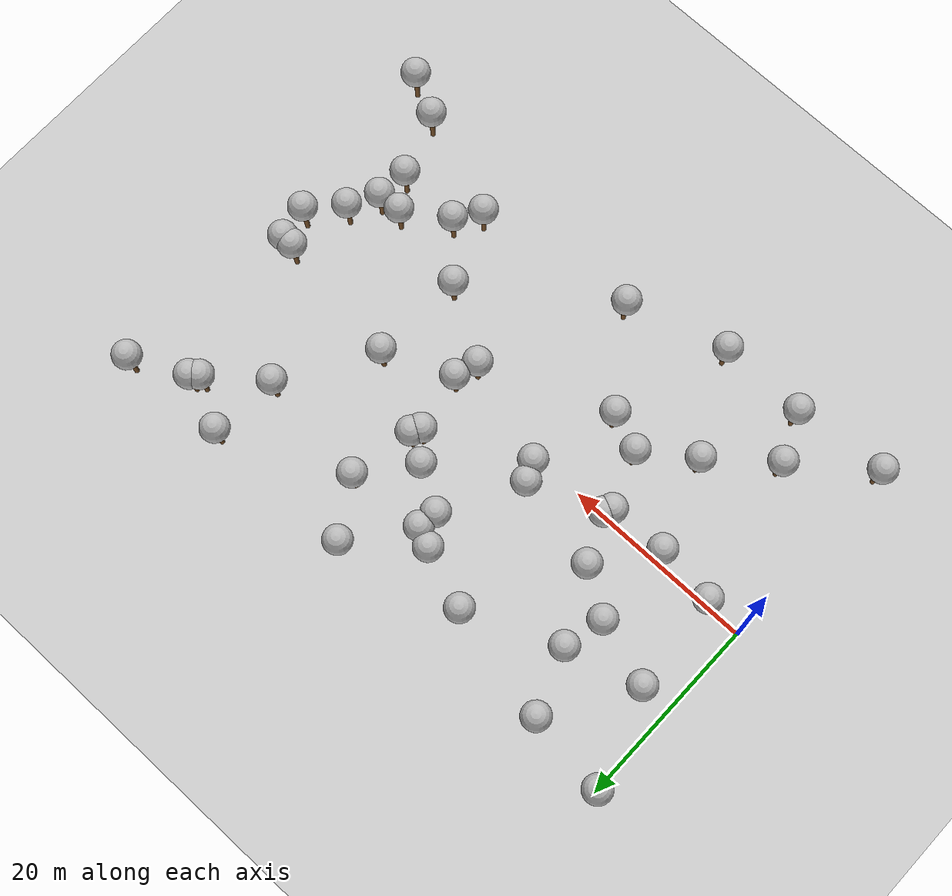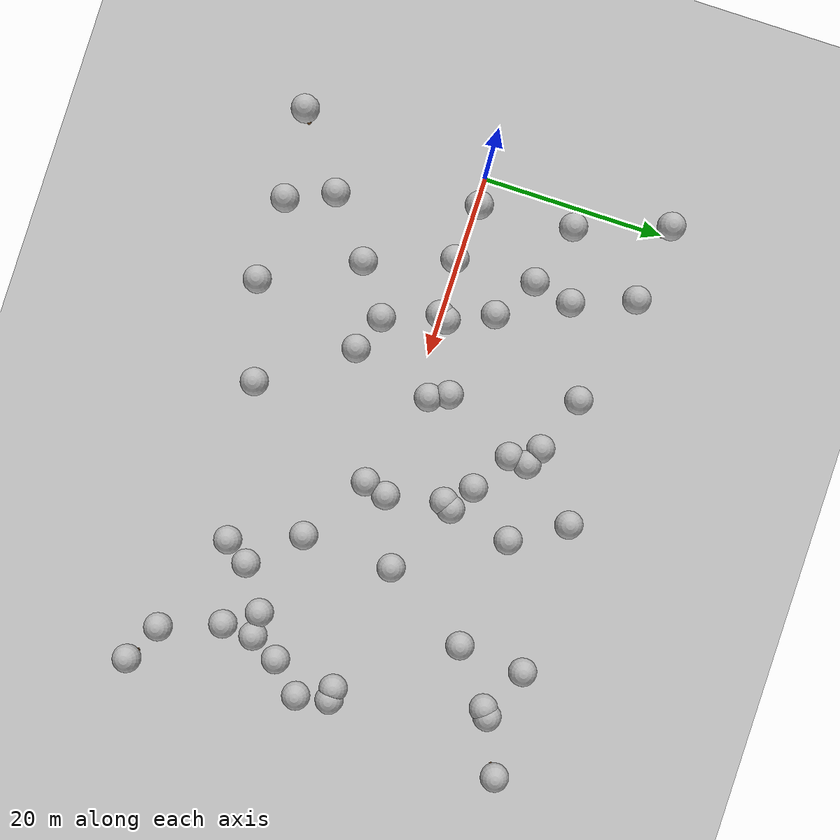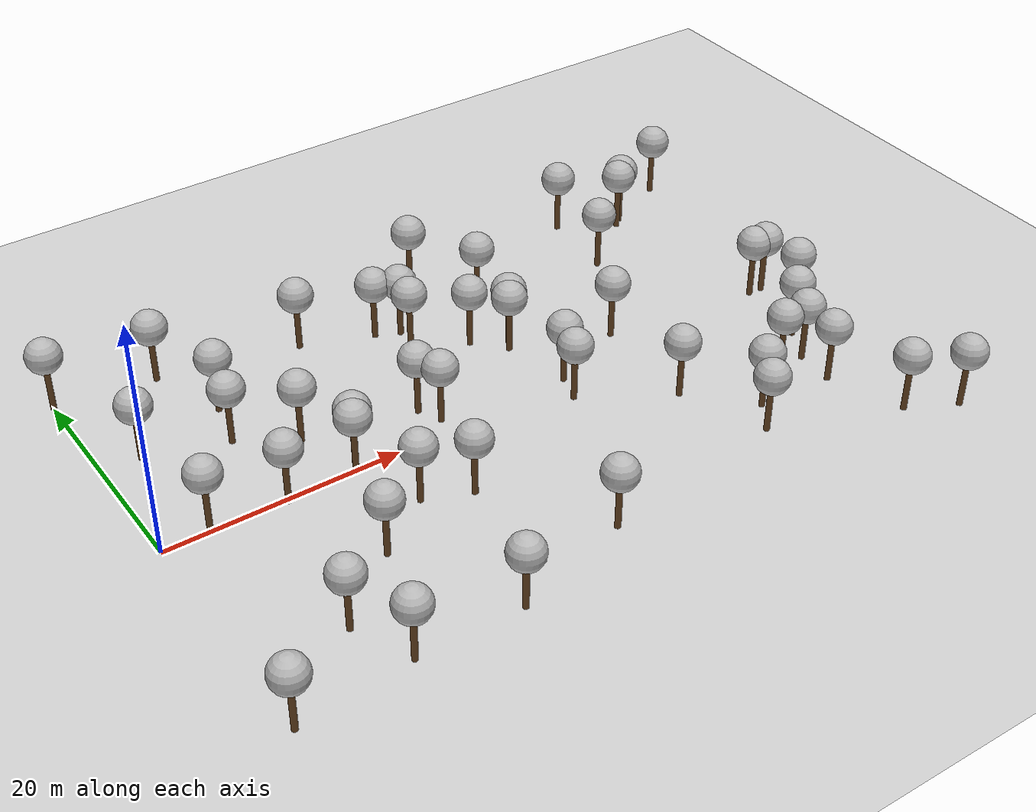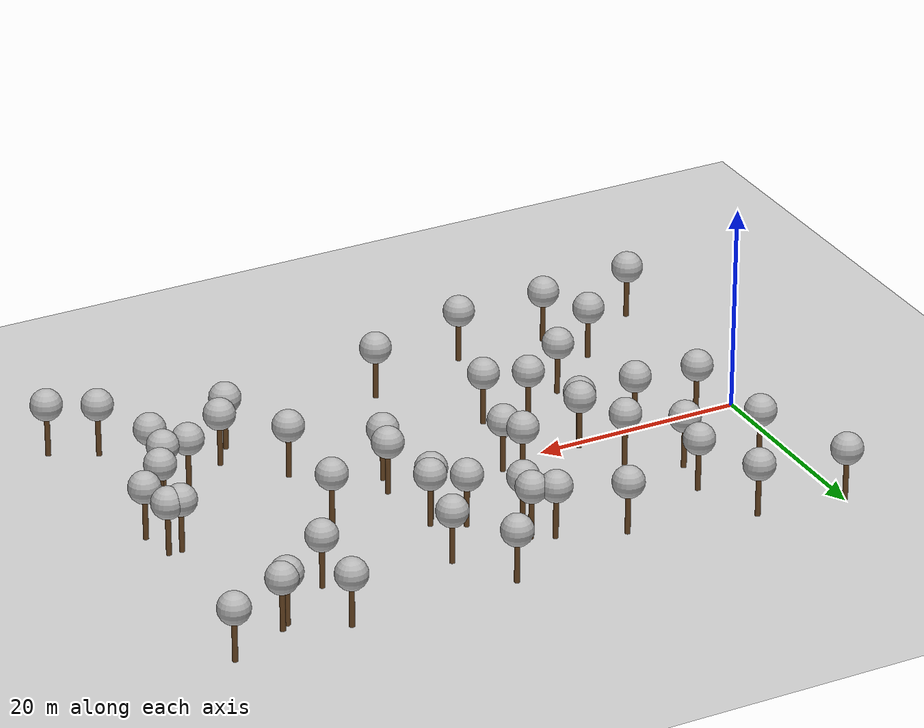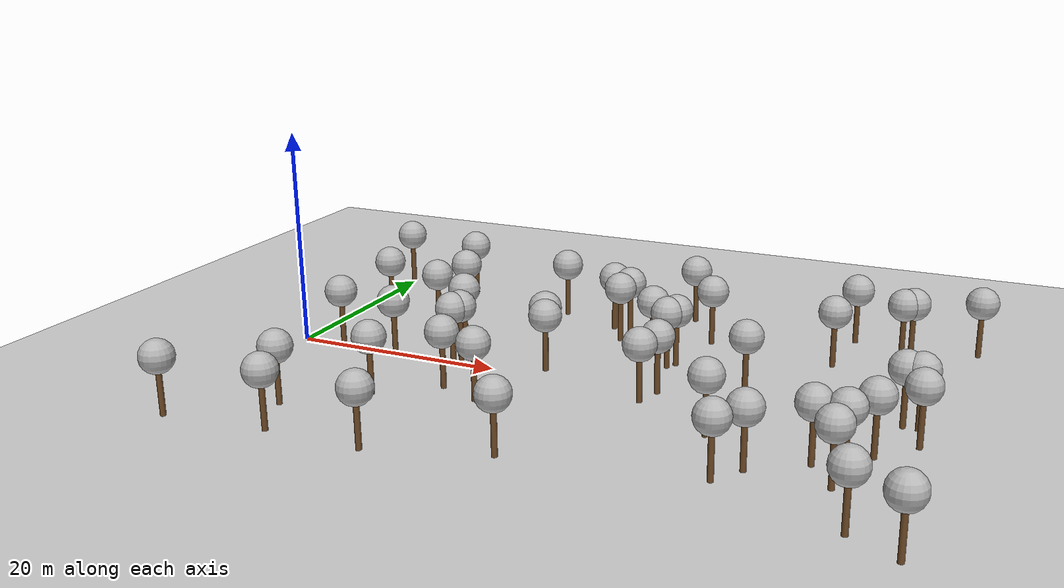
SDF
<sdf version='1.7'>
            <world name='default'>
                <light name='sun' type='directional'>
                <cast_shadows>1</cast_shadows>
                <pose>0 0 10 0 -0 0</pose>
                <diffuse>0.8 0.8 0.8 1</diffuse>
                <specular>0.2 0.2 0.2 1</specular>
                <attenuation>
                    <range>1000</range>
                    <constant>0.9</constant>
                    <linear>0.01</linear>
                    <quadratic>0.001</quadratic>
                </attenuation>
                <direction>-0.5 0.1 -0.9</direction>
                <spot>
                    <inner_angle>0</inner_angle>
                    <outer_angle>0</outer_angle>
                    <falloff>0</falloff>
                </spot>
                </light>
                <model name='ground_plane'>
                <static>1</static>
                <link name='link'>
                    <collision name='collision'>
                    <geometry>
                        <plane>
                        <normal>0 0 1</normal>
                        <size>100 100</size>
                        </plane>
                    </geometry>
                    <surface>
                        <contact>
                        <collide_bitmask>65535</collide_bitmask>
                        <ode/>
                        </contact>
                        <friction>
                        <ode>
                            <mu>100</mu>
                            <mu2>50</mu2>
                        </ode>
                        <torsional>
                            <ode/>
                        </torsional>
                        </friction>
                        <bounce/>
                    </surface>
                    <max_contacts>10</max_contacts>
                    </collision>
                    <visual name='visual'>
                    <cast_shadows>0</cast_shadows>
                    <geometry>
                        <plane>
                        <normal>0 0 1</normal>
                        <size>100 100</size>
                        </plane>
                    </geometry>
                    <material>
                        <script>
                        <uri>file://media/materials/scripts/gazebo.material</uri>
                        <name>Gazebo/Grey</name>
                        </script>
                    </material>
                    </visual>
                    <self_collide>0</self_collide>
                    <enable_wind>0</enable_wind>
                    <kinematic>0</kinematic>
                </link>
                </model>
                <gravity>0 0 -9.8</gravity>
                <magnetic_field>6e-06 2.3e-05 -4.2e-05</magnetic_field>
                <atmosphere type='adiabatic'/>
                <physics type='ode'>
                <max_step_size>0.001</max_step_size>
                <real_time_factor>1</real_time_factor>
                <real_time_update_rate>1000</real_time_update_rate>
                </physics>
                <scene>
                <ambient>0.4 0.4 0.4 1</ambient>
                <background>0.7 0.7 0.7 1</background>
                <shadows>1</shadows>
                </scene>
                <wind/>
                <spherical_coordinates>
                <surface_model>EARTH_WGS84</surface_model>
                <latitude_deg>0</latitude_deg>
                <longitude_deg>0</longitude_deg>
                <elevation>0</elevation>
                <heading_deg>0</heading_deg>
                </spherical_coordinates>

    <model name='tree_simple498'>
      <static>1</static>
      <link name='link'>
        <pose frame=''>0 0 0.1 0 -0 0</pose>
        <collision name='collision_trunk'>
          <pose frame=''>0 0 2 0 -0 0</pose>
          <geometry>
            <cylinder>
              <radius>0.25</radius>
              <length>4</length>
            </cylinder>
          </geometry>
        </collision>
        <collision name='collision_treetop'>
          <pose frame=''>0 0 5.2 0 -0 0</pose>
          <geometry>
            <sphere>
              <radius>1.5</radius>
            </sphere>
          </geometry>
        </collision>
        <visual name='trunk'>
          <pose frame=''>0 0 2 0 -0 0</pose>
          <geometry>
            <cylinder>
              <radius>0.25</radius>
              <length>4</length>
            </cylinder>
          </geometry>
          <material>
            <script>
              <uri>model://tree_simple/scripts</uri>
              <uri>model://tree_simple/materials/textures</uri>
              <name>TreeSimple/Trunk</name>
            </script>
          </material>
        </visual>
        <visual name='treetop'>
          <pose frame=''>0 0 5.2 0 -0 0</pose>
          <geometry>
            <sphere>
              <radius>1.5</radius>
            </sphere>
          </geometry>
          <material>
            <script>
              <uri>model://tree_simple/scripts</uri>
              <uri>model://tree_simple/materials/textures</uri>
              <name>TreeSimple/Treetop</name>
            </script>
          </material>
        </visual>
        <self_collide>0</self_collide>
        <kinematic>0</kinematic>
      </link>
      <pose frame=''>0.0 20.0 0 0 -0 0</pose>
    </model>
        <model name='tree_simple497'>
      <static>1</static>
      <link name='link'>
        <pose frame=''>0 0 0.1 0 -0 0</pose>
        <collision name='collision_trunk'>
          <pose frame=''>0 0 2 0 -0 0</pose>
          <geometry>
            <cylinder>
              <radius>0.25</radius>
              <length>4</length>
            </cylinder>
          </geometry>
        </collision>
        <collision name='collision_treetop'>
          <pose frame=''>0 0 5.2 0 -0 0</pose>
          <geometry>
            <sphere>
              <radius>1.5</radius>
            </sphere>
          </geometry>
        </collision>
        <visual name='trunk'>
          <pose frame=''>0 0 2 0 -0 0</pose>
          <geometry>
            <cylinder>
              <radius>0.25</radius>
              <length>4</length>
            </cylinder>
          </geometry>
          <material>
            <script>
              <uri>model://tree_simple/scripts</uri>
              <uri>model://tree_simple/materials/textures</uri>
              <name>TreeSimple/Trunk</name>
            </script>
          </material>
        </visual>
        <visual name='treetop'>
          <pose frame=''>0 0 5.2 0 -0 0</pose>
          <geometry>
            <sphere>
              <radius>1.5</radius>
            </sphere>
          </geometry>
          <material>
            <script>
              <uri>model://tree_simple/scripts</uri>
              <uri>model://tree_simple/materials/textures</uri>
              <name>TreeSimple/Treetop</name>
            </script>
          </material>
        </visual>
        <self_collide>0</self_collide>
        <kinematic>0</kinematic>
      </link>
      <pose frame=''>0.0 -20.0 0 0 -0 0</pose>
    </model>
        <model name='tree_simple496'>
      <static>1</static>
      <link name='link'>
        <pose frame=''>0 0 0.1 0 -0 0</pose>
        <collision name='collision_trunk'>
          <pose frame=''>0 0 2 0 -0 0</pose>
          <geometry>
            <cylinder>
              <radius>0.25</radius>
              <length>4</length>
            </cylinder>
          </geometry>
        </collision>
        <collision name='collision_treetop'>
          <pose frame=''>0 0 5.2 0 -0 0</pose>
          <geometry>
            <sphere>
              <radius>1.5</radius>
            </sphere>
          </geometry>
        </collision>
        <visual name='trunk'>
          <pose frame=''>0 0 2 0 -0 0</pose>
          <geometry>
            <cylinder>
              <radius>0.25</radius>
              <length>4</length>
            </cylinder>
          </geometry>
          <material>
            <script>
              <uri>model://tree_simple/scripts</uri>
              <uri>model://tree_simple/materials/textures</uri>
              <name>TreeSimple/Trunk</name>
            </script>
          </material>
        </visual>
        <visual name='treetop'>
          <pose frame=''>0 0 5.2 0 -0 0</pose>
          <geometry>
            <sphere>
              <radius>1.5</radius>
            </sphere>
          </geometry>
          <material>
            <script>
              <uri>model://tree_simple/scripts</uri>
              <uri>model://tree_simple/materials/textures</uri>
              <name>TreeSimple/Treetop</name>
            </script>
          </material>
        </visual>
        <self_collide>0</self_collide>
        <kinematic>0</kinematic>
      </link>
      <pose frame=''>60.0 20.0 0 0 -0 0</pose>
    </model>
        <model name='tree_simple495'>
      <static>1</static>
      <link name='link'>
        <pose frame=''>0 0 0.1 0 -0 0</pose>
        <collision name='collision_trunk'>
          <pose frame=''>0 0 2 0 -0 0</pose>
          <geometry>
            <cylinder>
              <radius>0.25</radius>
              <length>4</length>
            </cylinder>
          </geometry>
        </collision>
        <collision name='collision_treetop'>
          <pose frame=''>0 0 5.2 0 -0 0</pose>
          <geometry>
            <sphere>
              <radius>1.5</radius>
            </sphere>
          </geometry>
        </collision>
        <visual name='trunk'>
          <pose frame=''>0 0 2 0 -0 0</pose>
          <geometry>
            <cylinder>
              <radius>0.25</radius>
              <length>4</length>
            </cylinder>
          </geometry>
          <material>
            <script>
              <uri>model://tree_simple/scripts</uri>
              <uri>model://tree_simple/materials/textures</uri>
              <name>TreeSimple/Trunk</name>
            </script>
          </material>
        </visual>
        <visual name='treetop'>
          <pose frame=''>0 0 5.2 0 -0 0</pose>
          <geometry>
            <sphere>
              <radius>1.5</radius>
            </sphere>
          </geometry>
          <material>
            <script>
              <uri>model://tree_simple/scripts</uri>
              <uri>model://tree_simple/materials/textures</uri>
              <name>TreeSimple/Treetop</name>
            </script>
          </material>
        </visual>
        <self_collide>0</self_collide>
        <kinematic>0</kinematic>
      </link>
      <pose frame=''>60.0 -20.0 0 0 -0 0</pose>
    </model>
    <model name="tree_9_0"><pose frame="">9.54 -19.14 0 0 -0 0</pose><static>1</static><link name="link"><pose frame="">0 0 0.1 0 -0 0</pose><collision name="collision_trunk"><pose frame="">0 0 2 0 -0 0</pose><geometry><cylinder><radius>0.25</radius><length>4</length></cylinder></geometry></collision><collision name="collision_treetop"><pose frame="">0 0 5.2 0 -0 0</pose><geometry><sphere><radius>1.5</radius></sphere></geometry></collision><visual name="trunk"><pose frame="">0 0 2 0 -0 0</pose><geometry><cylinder><radius>0.25</radius><length>4</length></cylinder></geometry><material><script><uri>model://tree_simple/scripts</uri><uri>model://tree_simple/materials/textures</uri><name>TreeSimple/Trunk</name></script></material></visual><visual name="treetop"><pose frame="">0 0 5.2 0 -0 0</pose><geometry><sphere><radius>1.5</radius></sphere></geometry><material><script><uri>model://tree_simple/scripts</uri><uri>model://tree_simple/materials/textures</uri><name>TreeSimple/Treetop</name></script></material></visual><self_collide>0</self_collide><kinematic>0</kinematic></link></model><model name="tree_9_1"><pose frame="">26.18 14.16 0 0 -0 0</pose><static>1</static><link name="link"><pose frame="">0 0 0.1 0 -0 0</pose><collision name="collision_trunk"><pose frame="">0 0 2 0 -0 0</pose><geometry><cylinder><radius>0.25</radius><length>4</length></cylinder></geometry></collision><collision name="collision_treetop"><pose frame="">0 0 5.2 0 -0 0</pose><geometry><sphere><radius>1.5</radius></sphere></geometry></collision><visual name="trunk"><pose frame="">0 0 2 0 -0 0</pose><geometry><cylinder><radius>0.25</radius><length>4</length></cylinder></geometry><material><script><uri>model://tree_simple/scripts</uri><uri>model://tree_simple/materials/textures</uri><name>TreeSimple/Trunk</name></script></material></visual><visual name="treetop"><pose frame="">0 0 5.2 0 -0 0</pose><geometry><sphere><radius>1.5</radius></sphere></geometry><material><script><uri>model://tree_simple/scripts</uri><uri>model://tree_simple/materials/textures</uri><name>TreeSimple/Treetop</name></script></material></visual><self_collide>0</self_collide><kinematic>0</kinematic></link></model><model name="tree_9_2"><pose frame="">24.68 1.42 0 0 -0 0</pose><static>1</static><link name="link"><pose frame="">0 0 0.1 0 -0 0</pose><collision name="collision_trunk"><pose frame="">0 0 2 0 -0 0</pose><geometry><cylinder><radius>0.25</radius><length>4</length></cylinder></geometry></collision><collision name="collision_treetop"><pose frame="">0 0 5.2 0 -0 0</pose><geometry><sphere><radius>1.5</radius></sphere></geometry></collision><visual name="trunk"><pose frame="">0 0 2 0 -0 0</pose><geometry><cylinder><radius>0.25</radius><length>4</length></cylinder></geometry><material><script><uri>model://tree_simple/scripts</uri><uri>model://tree_simple/materials/textures</uri><name>TreeSimple/Trunk</name></script></material></visual><visual name="treetop"><pose frame="">0 0 5.2 0 -0 0</pose><geometry><sphere><radius>1.5</radius></sphere></geometry><material><script><uri>model://tree_simple/scripts</uri><uri>model://tree_simple/materials/textures</uri><name>TreeSimple/Treetop</name></script></material></visual><self_collide>0</self_collide><kinematic>0</kinematic></link></model><model name="tree_9_3"><pose frame="">48.15 12.43 0 0 -0 0</pose><static>1</static><link name="link"><pose frame="">0 0 0.1 0 -0 0</pose><collision name="collision_trunk"><pose frame="">0 0 2 0 -0 0</pose><geometry><cylinder><radius>0.25</radius><length>4</length></cylinder></geometry></collision><collision name="collision_treetop"><pose frame="">0 0 5.2 0 -0 0</pose><geometry><sphere><radius>1.5</radius></sphere></geometry></collision><visual name="trunk"><pose frame="">0 0 2 0 -0 0</pose><geometry><cylinder><radius>0.25</radius><length>4</length></cylinder></geometry><material><script><uri>model://tree_simple/scripts</uri><uri>model://tree_simple/materials/textures</uri><name>TreeSimple/Trunk</name></script></material></visual><visual name="treetop"><pose frame="">0 0 5.2 0 -0 0</pose><geometry><sphere><radius>1.5</radius></sphere></geometry><material><script><uri>model://tree_simple/scripts</uri><uri>model://tree_simple/materials/textures</uri><name>TreeSimple/Treetop</name></script></material></visual><self_collide>0</self_collide><kinematic>0</kinematic></link></model><model name="tree_9_4"><pose frame="">18.29 -5.77 0 0 -0 0</pose><static>1</static><link name="link"><pose frame="">0 0 0.1 0 -0 0</pose><collision name="collision_trunk"><pose frame="">0 0 2 0 -0 0</pose><geometry><cylinder><radius>0.25</radius><length>4</length></cylinder></geometry></collision><collision name="collision_treetop"><pose frame="">0 0 5.2 0 -0 0</pose><geometry><sphere><radius>1.5</radius></sphere></geometry></collision><visual name="trunk"><pose frame="">0 0 2 0 -0 0</pose><geometry><cylinder><radius>0.25</radius><length>4</length></cylinder></geometry><material><script><uri>model://tree_simple/scripts</uri><uri>model://tree_simple/materials/textures</uri><name>TreeSimple/Trunk</name></script></material></visual><visual name="treetop"><pose frame="">0 0 5.2 0 -0 0</pose><geometry><sphere><radius>1.5</radius></sphere></geometry><material><script><uri>model://tree_simple/scripts</uri><uri>model://tree_simple/materials/textures</uri><name>TreeSimple/Treetop</name></script></material></visual><self_collide>0</self_collide><kinematic>0</kinematic></link></model><model name="tree_9_5"><pose frame="">56.38 1.31 0 0 -0 0</pose><static>1</static><link name="link"><pose frame="">0 0 0.1 0 -0 0</pose><collision name="collision_trunk"><pose frame="">0 0 2 0 -0 0</pose><geometry><cylinder><radius>0.25</radius><length>4</length></cylinder></geometry></collision><collision name="collision_treetop"><pose frame="">0 0 5.2 0 -0 0</pose><geometry><sphere><radius>1.5</radius></sphere></geometry></collision><visual name="trunk"><pose frame="">0 0 2 0 -0 0</pose><geometry><cylinder><radius>0.25</radius><length>4</length></cylinder></geometry><material><script><uri>model://tree_simple/scripts</uri><uri>model://tree_simple/materials/textures</uri><name>TreeSimple/Trunk</name></script></material></visual><visual name="treetop"><pose frame="">0 0 5.2 0 -0 0</pose><geometry><sphere><radius>1.5</radius></sphere></geometry><material><script><uri>model://tree_simple/scripts</uri><uri>model://tree_simple/materials/textures</uri><name>TreeSimple/Treetop</name></script></material></visual><self_collide>0</self_collide><kinematic>0</kinematic></link></model><model name="tree_9_6"><pose frame="">32.8 19.35 0 0 -0 0</pose><static>1</static><link name="link"><pose frame="">0 0 0.1 0 -0 0</pose><collision name="collision_trunk"><pose frame="">0 0 2 0 -0 0</pose><geometry><cylinder><radius>0.25</radius><length>4</length></cylinder></geometry></collision><collision name="collision_treetop"><pose frame="">0 0 5.2 0 -0 0</pose><geometry><sphere><radius>1.5</radius></sphere></geometry></collision><visual name="trunk"><pose frame="">0 0 2 0 -0 0</pose><geometry><cylinder><radius>0.25</radius><length>4</length></cylinder></geometry><material><script><uri>model://tree_simple/scripts</uri><uri>model://tree_simple/materials/textures</uri><name>TreeSimple/Trunk</name></script></material></visual><visual name="treetop"><pose frame="">0 0 5.2 0 -0 0</pose><geometry><sphere><radius>1.5</radius></sphere></geometry><material><script><uri>model://tree_simple/scripts</uri><uri>model://tree_simple/materials/textures</uri><name>TreeSimple/Treetop</name></script></material></visual><self_collide>0</self_collide><kinematic>0</kinematic></link></model><model name="tree_9_7"><pose frame="">53.54 16.73 0 0 -0 0</pose><static>1</static><link name="link"><pose frame="">0 0 0.1 0 -0 0</pose><collision name="collision_trunk"><pose frame="">0 0 2 0 -0 0</pose><geometry><cylinder><radius>0.25</radius><length>4</length></cylinder></geometry></collision><collision name="collision_treetop"><pose frame="">0 0 5.2 0 -0 0</pose><geometry><sphere><radius>1.5</radius></sphere></geometry></collision><visual name="trunk"><pose frame="">0 0 2 0 -0 0</pose><geometry><cylinder><radius>0.25</radius><length>4</length></cylinder></geometry><material><script><uri>model://tree_simple/scripts</uri><uri>model://tree_simple/materials/textures</uri><name>TreeSimple/Trunk</name></script></material></visual><visual name="treetop"><pose frame="">0 0 5.2 0 -0 0</pose><geometry><sphere><radius>1.5</radius></sphere></geometry><material><script><uri>model://tree_simple/scripts</uri><uri>model://tree_simple/materials/textures</uri><name>TreeSimple/Treetop</name></script></material></visual><self_collide>0</self_collide><kinematic>0</kinematic></link></model><model name="tree_9_8"><pose frame="">10.13 -0.37 0 0 -0 0</pose><static>1</static><link name="link"><pose frame="">0 0 0.1 0 -0 0</pose><collision name="collision_trunk"><pose frame="">0 0 2 0 -0 0</pose><geometry><cylinder><radius>0.25</radius><length>4</length></cylinder></geometry></collision><collision name="collision_treetop"><pose frame="">0 0 5.2 0 -0 0</pose><geometry><sphere><radius>1.5</radius></sphere></geometry></collision><visual name="trunk"><pose frame="">0 0 2 0 -0 0</pose><geometry><cylinder><radius>0.25</radius><length>4</length></cylinder></geometry><material><script><uri>model://tree_simple/scripts</uri><uri>model://tree_simple/materials/textures</uri><name>TreeSimple/Trunk</name></script></material></visual><visual name="treetop"><pose frame="">0 0 5.2 0 -0 0</pose><geometry><sphere><radius>1.5</radius></sphere></geometry><material><script><uri>model://tree_simple/scripts</uri><uri>model://tree_simple/materials/textures</uri><name>TreeSimple/Treetop</name></script></material></visual><self_collide>0</self_collide><kinematic>0</kinematic></link></model><model name="tree_9_9"><pose frame="">55.9 -17.91 0 0 -0 0</pose><static>1</static><link name="link"><pose frame="">0 0 0.1 0 -0 0</pose><collision name="collision_trunk"><pose frame="">0 0 2 0 -0 0</pose><geometry><cylinder><radius>0.25</radius><length>4</length></cylinder></geometry></collision><collision name="collision_treetop"><pose frame="">0 0 5.2 0 -0 0</pose><geometry><sphere><radius>1.5</radius></sphere></geometry></collision><visual name="trunk"><pose frame="">0 0 2 0 -0 0</pose><geometry><cylinder><radius>0.25</radius><length>4</length></cylinder></geometry><material><script><uri>model://tree_simple/scripts</uri><uri>model://tree_simple/materials/textures</uri><name>TreeSimple/Trunk</name></script></material></visual><visual name="treetop"><pose frame="">0 0 5.2 0 -0 0</pose><geometry><sphere><radius>1.5</radius></sphere></geometry><material><script><uri>model://tree_simple/scripts</uri><uri>model://tree_simple/materials/textures</uri><name>TreeSimple/Treetop</name></script></material></visual><self_collide>0</self_collide><kinematic>0</kinematic></link></model><model name="tree_9_10"><pose frame="">35.73 0.32 0 0 -0 0</pose><static>1</static><link name="link"><pose frame="">0 0 0.1 0 -0 0</pose><collision name="collision_trunk"><pose frame="">0 0 2 0 -0 0</pose><geometry><cylinder><radius>0.25</radius><length>4</length></cylinder></geometry></collision><collision name="collision_treetop"><pose frame="">0 0 5.2 0 -0 0</pose><geometry><sphere><radius>1.5</radius></sphere></geometry></collision><visual name="trunk"><pose frame="">0 0 2 0 -0 0</pose><geometry><cylinder><radius>0.25</radius><length>4</length></cylinder></geometry><material><script><uri>model://tree_simple/scripts</uri><uri>model://tree_simple/materials/textures</uri><name>TreeSimple/Trunk</name></script></material></visual><visual name="treetop"><pose frame="">0 0 5.2 0 -0 0</pose><geometry><sphere><radius>1.5</radius></sphere></geometry><material><script><uri>model://tree_simple/scripts</uri><uri>model://tree_simple/materials/textures</uri><name>TreeSimple/Treetop</name></script></material></visual><self_collide>0</self_collide><kinematic>0</kinematic></link></model><model name="tree_9_11"><pose frame="">16.08 -0.07 0 0 -0 0</pose><static>1</static><link name="link"><pose frame="">0 0 0.1 0 -0 0</pose><collision name="collision_trunk"><pose frame="">0 0 2 0 -0 0</pose><geometry><cylinder><radius>0.25</radius><length>4</length></cylinder></geometry></collision><collision name="collision_treetop"><pose frame="">0 0 5.2 0 -0 0</pose><geometry><sphere><radius>1.5</radius></sphere></geometry></collision><visual name="trunk"><pose frame="">0 0 2 0 -0 0</pose><geometry><cylinder><radius>0.25</radius><length>4</length></cylinder></geometry><material><script><uri>model://tree_simple/scripts</uri><uri>model://tree_simple/materials/textures</uri><name>TreeSimple/Trunk</name></script></material></visual><visual name="treetop"><pose frame="">0 0 5.2 0 -0 0</pose><geometry><sphere><radius>1.5</radius></sphere></geometry><material><script><uri>model://tree_simple/scripts</uri><uri>model://tree_simple/materials/textures</uri><name>TreeSimple/Treetop</name></script></material></visual><self_collide>0</self_collide><kinematic>0</kinematic></link></model><model name="tree_9_12"><pose frame="">4.01 0.31 0 0 -0 0</pose><static>1</static><link name="link"><pose frame="">0 0 0.1 0 -0 0</pose><collision name="collision_trunk"><pose frame="">0 0 2 0 -0 0</pose><geometry><cylinder><radius>0.25</radius><length>4</length></cylinder></geometry></collision><collision name="collision_treetop"><pose frame="">0 0 5.2 0 -0 0</pose><geometry><sphere><radius>1.5</radius></sphere></geometry></collision><visual name="trunk"><pose frame="">0 0 2 0 -0 0</pose><geometry><cylinder><radius>0.25</radius><length>4</length></cylinder></geometry><material><script><uri>model://tree_simple/scripts</uri><uri>model://tree_simple/materials/textures</uri><name>TreeSimple/Trunk</name></script></material></visual><visual name="treetop"><pose frame="">0 0 5.2 0 -0 0</pose><geometry><sphere><radius>1.5</radius></sphere></geometry><material><script><uri>model://tree_simple/scripts</uri><uri>model://tree_simple/materials/textures</uri><name>TreeSimple/Treetop</name></script></material></visual><self_collide>0</self_collide><kinematic>0</kinematic></link></model><model name="tree_9_13"><pose frame="">35.02 -2.09 0 0 -0 0</pose><static>1</static><link name="link"><pose frame="">0 0 0.1 0 -0 0</pose><collision name="collision_trunk"><pose frame="">0 0 2 0 -0 0</pose><geometry><cylinder><radius>0.25</radius><length>4</length></cylinder></geometry></collision><collision name="collision_treetop"><pose frame="">0 0 5.2 0 -0 0</pose><geometry><sphere><radius>1.5</radius></sphere></geometry></collision><visual name="trunk"><pose frame="">0 0 2 0 -0 0</pose><geometry><cylinder><radius>0.25</radius><length>4</length></cylinder></geometry><material><script><uri>model://tree_simple/scripts</uri><uri>model://tree_simple/materials/textures</uri><name>TreeSimple/Trunk</name></script></material></visual><visual name="treetop"><pose frame="">0 0 5.2 0 -0 0</pose><geometry><sphere><radius>1.5</radius></sphere></geometry><material><script><uri>model://tree_simple/scripts</uri><uri>model://tree_simple/materials/textures</uri><name>TreeSimple/Treetop</name></script></material></visual><self_collide>0</self_collide><kinematic>0</kinematic></link></model><model name="tree_9_14"><pose frame="">8.39 18.91 0 0 -0 0</pose><static>1</static><link name="link"><pose frame="">0 0 0.1 0 -0 0</pose><collision name="collision_trunk"><pose frame="">0 0 2 0 -0 0</pose><geometry><cylinder><radius>0.25</radius><length>4</length></cylinder></geometry></collision><collision name="collision_treetop"><pose frame="">0 0 5.2 0 -0 0</pose><geometry><sphere><radius>1.5</radius></sphere></geometry></collision><visual name="trunk"><pose frame="">0 0 2 0 -0 0</pose><geometry><cylinder><radius>0.25</radius><length>4</length></cylinder></geometry><material><script><uri>model://tree_simple/scripts</uri><uri>model://tree_simple/materials/textures</uri><name>TreeSimple/Trunk</name></script></material></visual><visual name="treetop"><pose frame="">0 0 5.2 0 -0 0</pose><geometry><sphere><radius>1.5</radius></sphere></geometry><material><script><uri>model://tree_simple/scripts</uri><uri>model://tree_simple/materials/textures</uri><name>TreeSimple/Treetop</name></script></material></visual><self_collide>0</self_collide><kinematic>0</kinematic></link></model><model name="tree_9_15"><pose frame="">53.78 -8.26 0 0 -0 0</pose><static>1</static><link name="link"><pose frame="">0 0 0.1 0 -0 0</pose><collision name="collision_trunk"><pose frame="">0 0 2 0 -0 0</pose><geometry><cylinder><radius>0.25</radius><length>4</length></cylinder></geometry></collision><collision name="collision_treetop"><pose frame="">0 0 5.2 0 -0 0</pose><geometry><sphere><radius>1.5</radius></sphere></geometry></collision><visual name="trunk"><pose frame="">0 0 2 0 -0 0</pose><geometry><cylinder><radius>0.25</radius><length>4</length></cylinder></geometry><material><script><uri>model://tree_simple/scripts</uri><uri>model://tree_simple/materials/textures</uri><name>TreeSimple/Trunk</name></script></material></visual><visual name="treetop"><pose frame="">0 0 5.2 0 -0 0</pose><geometry><sphere><radius>1.5</radius></sphere></geometry><material><script><uri>model://tree_simple/scripts</uri><uri>model://tree_simple/materials/textures</uri><name>TreeSimple/Treetop</name></script></material></visual><self_collide>0</self_collide><kinematic>0</kinematic></link></model><model name="tree_9_16"><pose frame="">23.76 3.4 0 0 -0 0</pose><static>1</static><link name="link"><pose frame="">0 0 0.1 0 -0 0</pose><collision name="collision_trunk"><pose frame="">0 0 2 0 -0 0</pose><geometry><cylinder><radius>0.25</radius><length>4</length></cylinder></geometry></collision><collision name="collision_treetop"><pose frame="">0 0 5.2 0 -0 0</pose><geometry><sphere><radius>1.5</radius></sphere></geometry></collision><visual name="trunk"><pose frame="">0 0 2 0 -0 0</pose><geometry><cylinder><radius>0.25</radius><length>4</length></cylinder></geometry><material><script><uri>model://tree_simple/scripts</uri><uri>model://tree_simple/materials/textures</uri><name>TreeSimple/Trunk</name></script></material></visual><visual name="treetop"><pose frame="">0 0 5.2 0 -0 0</pose><geometry><sphere><radius>1.5</radius></sphere></geometry><material><script><uri>model://tree_simple/scripts</uri><uri>model://tree_simple/materials/textures</uri><name>TreeSimple/Treetop</name></script></material></visual><self_collide>0</self_collide><kinematic>0</kinematic></link></model><model name="tree_9_17"><pose frame="">16.47 0.71 0 0 -0 0</pose><static>1</static><link name="link"><pose frame="">0 0 0.1 0 -0 0</pose><collision name="collision_trunk"><pose frame="">0 0 2 0 -0 0</pose><geometry><cylinder><radius>0.25</radius><length>4</length></cylinder></geometry></collision><collision name="collision_treetop"><pose frame="">0 0 5.2 0 -0 0</pose><geometry><sphere><radius>1.5</radius></sphere></geometry></collision><visual name="trunk"><pose frame="">0 0 2 0 -0 0</pose><geometry><cylinder><radius>0.25</radius><length>4</length></cylinder></geometry><material><script><uri>model://tree_simple/scripts</uri><uri>model://tree_simple/materials/textures</uri><name>TreeSimple/Trunk</name></script></material></visual><visual name="treetop"><pose frame="">0 0 5.2 0 -0 0</pose><geometry><sphere><radius>1.5</radius></sphere></geometry><material><script><uri>model://tree_simple/scripts</uri><uri>model://tree_simple/materials/textures</uri><name>TreeSimple/Treetop</name></script></material></visual><self_collide>0</self_collide><kinematic>0</kinematic></link></model><model name="tree_9_18"><pose frame="">28.16 13.29 0 0 -0 0</pose><static>1</static><link name="link"><pose frame="">0 0 0.1 0 -0 0</pose><collision name="collision_trunk"><pose frame="">0 0 2 0 -0 0</pose><geometry><cylinder><radius>0.25</radius><length>4</length></cylinder></geometry></collision><collision name="collision_treetop"><pose frame="">0 0 5.2 0 -0 0</pose><geometry><sphere><radius>1.5</radius></sphere></geometry></collision><visual name="trunk"><pose frame="">0 0 2 0 -0 0</pose><geometry><cylinder><radius>0.25</radius><length>4</length></cylinder></geometry><material><script><uri>model://tree_simple/scripts</uri><uri>model://tree_simple/materials/textures</uri><name>TreeSimple/Trunk</name></script></material></visual><visual name="treetop"><pose frame="">0 0 5.2 0 -0 0</pose><geometry><sphere><radius>1.5</radius></sphere></geometry><material><script><uri>model://tree_simple/scripts</uri><uri>model://tree_simple/materials/textures</uri><name>TreeSimple/Treetop</name></script></material></visual><self_collide>0</self_collide><kinematic>0</kinematic></link></model><model name="tree_9_19"><pose frame="">58.29 -2.15 0 0 -0 0</pose><static>1</static><link name="link"><pose frame="">0 0 0.1 0 -0 0</pose><collision name="collision_trunk"><pose frame="">0 0 2 0 -0 0</pose><geometry><cylinder><radius>0.25</radius><length>4</length></cylinder></geometry></collision><collision name="collision_treetop"><pose frame="">0 0 5.2 0 -0 0</pose><geometry><sphere><radius>1.5</radius></sphere></geometry></collision><visual name="trunk"><pose frame="">0 0 2 0 -0 0</pose><geometry><cylinder><radius>0.25</radius><length>4</length></cylinder></geometry><material><script><uri>model://tree_simple/scripts</uri><uri>model://tree_simple/materials/textures</uri><name>TreeSimple/Trunk</name></script></material></visual><visual name="treetop"><pose frame="">0 0 5.2 0 -0 0</pose><geometry><sphere><radius>1.5</radius></sphere></geometry><material><script><uri>model://tree_simple/scripts</uri><uri>model://tree_simple/materials/textures</uri><name>TreeSimple/Treetop</name></script></material></visual><self_collide>0</self_collide><kinematic>0</kinematic></link></model><model name="tree_9_20"><pose frame="">3.19 10.34 0 0 -0 0</pose><static>1</static><link name="link"><pose frame="">0 0 0.1 0 -0 0</pose><collision name="collision_trunk"><pose frame="">0 0 2 0 -0 0</pose><geometry><cylinder><radius>0.25</radius><length>4</length></cylinder></geometry></collision><collision name="collision_treetop"><pose frame="">0 0 5.2 0 -0 0</pose><geometry><sphere><radius>1.5</radius></sphere></geometry></collision><visual name="trunk"><pose frame="">0 0 2 0 -0 0</pose><geometry><cylinder><radius>0.25</radius><length>4</length></cylinder></geometry><material><script><uri>model://tree_simple/scripts</uri><uri>model://tree_simple/materials/textures</uri><name>TreeSimple/Trunk</name></script></material></visual><visual name="treetop"><pose frame="">0 0 5.2 0 -0 0</pose><geometry><sphere><radius>1.5</radius></sphere></geometry><material><script><uri>model://tree_simple/scripts</uri><uri>model://tree_simple/materials/textures</uri><name>TreeSimple/Treetop</name></script></material></visual><self_collide>0</self_collide><kinematic>0</kinematic></link></model><model name="tree_9_21"><pose frame="">35.0 7.18 0 0 -0 0</pose><static>1</static><link name="link"><pose frame="">0 0 0.1 0 -0 0</pose><collision name="collision_trunk"><pose frame="">0 0 2 0 -0 0</pose><geometry><cylinder><radius>0.25</radius><length>4</length></cylinder></geometry></collision><collision name="collision_treetop"><pose frame="">0 0 5.2 0 -0 0</pose><geometry><sphere><radius>1.5</radius></sphere></geometry></collision><visual name="trunk"><pose frame="">0 0 2 0 -0 0</pose><geometry><cylinder><radius>0.25</radius><length>4</length></cylinder></geometry><material><script><uri>model://tree_simple/scripts</uri><uri>model://tree_simple/materials/textures</uri><name>TreeSimple/Trunk</name></script></material></visual><visual name="treetop"><pose frame="">0 0 5.2 0 -0 0</pose><geometry><sphere><radius>1.5</radius></sphere></geometry><material><script><uri>model://tree_simple/scripts</uri><uri>model://tree_simple/materials/textures</uri><name>TreeSimple/Treetop</name></script></material></visual><self_collide>0</self_collide><kinematic>0</kinematic></link></model><model name="tree_9_22"><pose frame="">42.28 -6.47 0 0 -0 0</pose><static>1</static><link name="link"><pose frame="">0 0 0.1 0 -0 0</pose><collision name="collision_trunk"><pose frame="">0 0 2 0 -0 0</pose><geometry><cylinder><radius>0.25</radius><length>4</length></cylinder></geometry></collision><collision name="collision_treetop"><pose frame="">0 0 5.2 0 -0 0</pose><geometry><sphere><radius>1.5</radius></sphere></geometry></collision><visual name="trunk"><pose frame="">0 0 2 0 -0 0</pose><geometry><cylinder><radius>0.25</radius><length>4</length></cylinder></geometry><material><script><uri>model://tree_simple/scripts</uri><uri>model://tree_simple/materials/textures</uri><name>TreeSimple/Trunk</name></script></material></visual><visual name="treetop"><pose frame="">0 0 5.2 0 -0 0</pose><geometry><sphere><radius>1.5</radius></sphere></geometry><material><script><uri>model://tree_simple/scripts</uri><uri>model://tree_simple/materials/textures</uri><name>TreeSimple/Treetop</name></script></material></visual><self_collide>0</self_collide><kinematic>0</kinematic></link></model><model name="tree_9_23"><pose frame="">53.55 -11.61 0 0 -0 0</pose><static>1</static><link name="link"><pose frame="">0 0 0.1 0 -0 0</pose><collision name="collision_trunk"><pose frame="">0 0 2 0 -0 0</pose><geometry><cylinder><radius>0.25</radius><length>4</length></cylinder></geometry></collision><collision name="collision_treetop"><pose frame="">0 0 5.2 0 -0 0</pose><geometry><sphere><radius>1.5</radius></sphere></geometry></collision><visual name="trunk"><pose frame="">0 0 2 0 -0 0</pose><geometry><cylinder><radius>0.25</radius><length>4</length></cylinder></geometry><material><script><uri>model://tree_simple/scripts</uri><uri>model://tree_simple/materials/textures</uri><name>TreeSimple/Trunk</name></script></material></visual><visual name="treetop"><pose frame="">0 0 5.2 0 -0 0</pose><geometry><sphere><radius>1.5</radius></sphere></geometry><material><script><uri>model://tree_simple/scripts</uri><uri>model://tree_simple/materials/textures</uri><name>TreeSimple/Treetop</name></script></material></visual><self_collide>0</self_collide><kinematic>0</kinematic></link></model>
    <model name="tree_1_21">
  <pose frame="">28.67 -16.27 0 0 -0 0</pose>
  <static>1</static>
  <link name="link">
    <pose frame="">0 0 0.1 0 -0 0</pose>
    <collision name="collision_trunk"><pose frame="">0 0 2 0 -0 0</pose><geometry><cylinder><radius>0.25</radius><length>4</length></cylinder></geometry></collision>
    <collision name="collision_treetop"><pose frame="">0 0 5.2 0 -0 0</pose><geometry><sphere><radius>1.5</radius></sphere></geometry></collision>
    <visual name="trunk"><pose frame="">0 0 2 0 -0 0</pose><geometry><cylinder><radius>0.25</radius><length>4</length></cylinder></geometry><material><script><uri>model://tree_simple/scripts</uri><uri>model://tree_simple/materials/textures</uri><name>TreeSimple/Trunk</name></script></material></visual>
    <visual name="treetop"><pose frame="">0 0 5.2 0 -0 0</pose><geometry><sphere><radius>1.5</radius></sphere></geometry><material><script><uri>model://tree_simple/scripts</uri><uri>model://tree_simple/materials/textures</uri><name>TreeSimple/Treetop</name></script></material></visual>
    <self_collide>0</self_collide><kinematic>0</kinematic>
  </link>
</model>
<model name="tree_1_22">
  <pose frame="">14.36 5.39 0 0 -0 0</pose>
  <static>1</static>
  <link name="link">
    <pose frame="">0 0 0.1 0 -0 0</pose>
    <collision name="collision_trunk"><pose frame="">0 0 2 0 -0 0</pose><geometry><cylinder><radius>0.25</radius><length>4</length></cylinder></geometry></collision>
    <collision name="collision_treetop"><pose frame="">0 0 5.2 0 -0 0</pose><geometry><sphere><radius>1.5</radius></sphere></geometry></collision>
    <visual name="trunk"><pose frame="">0 0 2 0 -0 0</pose><geometry><cylinder><radius>0.25</radius><length>4</length></cylinder></geometry><material><script><uri>model://tree_simple/scripts</uri><uri>model://tree_simple/materials/textures</uri><name>TreeSimple/Trunk</name></script></material></visual>
    <visual name="treetop"><pose frame="">0 0 5.2 0 -0 0</pose><geometry><sphere><radius>1.5</radius></sphere></geometry><material><script><uri>model://tree_simple/scripts</uri><uri>model://tree_simple/materials/textures</uri><name>TreeSimple/Treetop</name></script></material></visual>
    <self_collide>0</self_collide><kinematic>0</kinematic>
  </link>
</model>
<model name="tree_1_23">
  <pose frame="">51.28 -8.37 0 0 -0 0</pose>
  <static>1</static>
  <link name="link">
    <pose frame="">0 0 0.1 0 -0 0</pose>
    <collision name="collision_trunk"><pose frame="">0 0 2 0 -0 0</pose><geometry><cylinder><radius>0.25</radius><length>4</length></cylinder></geometry></collision>
    <collision name="collision_treetop"><pose frame="">0 0 5.2 0 -0 0</pose><geometry><sphere><radius>1.5</radius></sphere></geometry></collision>
    <visual name="trunk"><pose frame="">0 0 2 0 -0 0</pose><geometry><cylinder><radius>0.25</radius><length>4</length></cylinder></geometry><material><script><uri>model://tree_simple/scripts</uri><uri>model://tree_simple/materials/textures</uri><name>TreeSimple/Trunk</name></script></material></visual>
    <visual name="treetop"><pose frame="">0 0 5.2 0 -0 0</pose><geometry><sphere><radius>1.5</radius></sphere></geometry><material><script><uri>model://tree_simple/scripts</uri><uri>model://tree_simple/materials/textures</uri><name>TreeSimple/Treetop</name></script></material></visual>
    <self_collide>0</self_collide><kinematic>0</kinematic>
  </link>
</model>
<model name="tree_1_24">
  <pose frame="">36.25 13.84 0 0 -0 0</pose>
  <static>1</static>
  <link name="link">
    <pose frame="">0 0 0.1 0 -0 0</pose>
    <collision name="collision_trunk"><pose frame="">0 0 2 0 -0 0</pose><geometry><cylinder><radius>0.25</radius><length>4</length></cylinder></geometry></collision>
    <collision name="collision_treetop"><pose frame="">0 0 5.2 0 -0 0</pose><geometry><sphere><radius>1.5</radius></sphere></geometry></collision>
    <visual name="trunk"><pose frame="">0 0 2 0 -0 0</pose><geometry><cylinder><radius>0.25</radius><length>4</length></cylinder></geometry><material><script><uri>model://tree_simple/scripts</uri><uri>model://tree_simple/materials/textures</uri><name>TreeSimple/Trunk</name></script></material></visual>
    <visual name="treetop"><pose frame="">0 0 5.2 0 -0 0</pose><geometry><sphere><radius>1.5</radius></sphere></geometry><material><script><uri>model://tree_simple/scripts</uri><uri>model://tree_simple/materials/textures</uri><name>TreeSimple/Treetop</name></script></material></visual>
    <self_collide>0</self_collide><kinematic>0</kinematic>
  </link>
</model>
<model name="tree_1_25">
  <pose frame="">22.14 -7.28 0 0 -0 0</pose>
  <static>1</static>
  <link name="link">
    <pose frame="">0 0 0.1 0 -0 0</pose>
    <collision name="collision_trunk"><pose frame="">0 0 2 0 -0 0</pose><geometry><cylinder><radius>0.25</radius><length>4</length></cylinder></geometry></collision>
    <collision name="collision_treetop"><pose frame="">0 0 5.2 0 -0 0</pose><geometry><sphere><radius>1.5</radius></sphere></geometry></collision>
    <visual name="trunk"><pose frame="">0 0 2 0 -0 0</pose><geometry><cylinder><radius>0.25</radius><length>4</length></cylinder></geometry><material><script><uri>model://tree_simple/scripts</uri><uri>model://tree_simple/materials/textures</uri><name>TreeSimple/Trunk</name></script></material></visual>
    <visual name="treetop"><pose frame="">0 0 5.2 0 -0 0</pose><geometry><sphere><radius>1.5</radius></sphere></geometry><material><script><uri>model://tree_simple/scripts</uri><uri>model://tree_simple/materials/textures</uri><name>TreeSimple/Treetop</name></script></material></visual>
    <self_collide>0</self_collide><kinematic>0</kinematic>
  </link>
</model>
<model name="tree_1_26">
  <pose frame="">57.63 1.27 0 0 -0 0</pose>
  <static>1</static>
  <link name="link">
    <pose frame="">0 0 0.1 0 -0 0</pose>
    <collision name="collision_trunk"><pose frame="">0 0 2 0 -0 0</pose><geometry><cylinder><radius>0.25</radius><length>4</length></cylinder></geometry></collision>
    <collision name="collision_treetop"><pose frame="">0 0 5.2 0 -0 0</pose><geometry><sphere><radius>1.5</radius></sphere></geometry></collision>
    <visual name="trunk"><pose frame="">0 0 2 0 -0 0</pose><geometry><cylinder><radius>0.25</radius><length>4</length></cylinder></geometry><material><script><uri>model://tree_simple/scripts</uri><uri>model://tree_simple/materials/textures</uri><name>TreeSimple/Trunk</name></script></material></visual>
    <visual name="treetop"><pose frame="">0 0 5.2 0 -0 0</pose><geometry><sphere><radius>1.5</radius></sphere></geometry><material><script><uri>model://tree_simple/scripts</uri><uri>model://tree_simple/materials/textures</uri><name>TreeSimple/Treetop</name></script></material></visual>
    <self_collide>0</self_collide><kinematic>0</kinematic>
  </link>
</model>
<model name="tree_1_27">
  <pose frame="">10.79 12.45 0 0 -0 0</pose>
  <static>1</static>
  <link name="link">
    <pose frame="">0 0 0.1 0 -0 0</pose>
    <collision name="collision_trunk"><pose frame="">0 0 2 0 -0 0</pose><geometry><cylinder><radius>0.25</radius><length>4</length></cylinder></geometry></collision>
    <collision name="collision_treetop"><pose frame="">0 0 5.2 0 -0 0</pose><geometry><sphere><radius>1.5</radius></sphere></geometry></collision>
    <visual name="trunk"><pose frame="">0 0 2 0 -0 0</pose><geometry><cylinder><radius>0.25</radius><length>4</length></cylinder></geometry><material><script><uri>model://tree_simple/scripts</uri><uri>model://tree_simple/materials/textures</uri><name>TreeSimple/Trunk</name></script></material></visual>
    <visual name="treetop"><pose frame="">0 0 5.2 0 -0 0</pose><geometry><sphere><radius>1.5</radius></sphere></geometry><material><script><uri>model://tree_simple/scripts</uri><uri>model://tree_simple/materials/textures</uri><name>TreeSimple/Treetop</name></script></material></visual>
    <self_collide>0</self_collide><kinematic>0</kinematic>
  </link>
</model>
<model name="tree_1_28">
  <pose frame="">46.84 -11.28 0 0 -0 0</pose>
  <static>1</static>
  <link name="link">
    <pose frame="">0 0 0.1 0 -0 0</pose>
    <collision name="collision_trunk"><pose frame="">0 0 2 0 -0 0</pose><geometry><cylinder><radius>0.25</radius><length>4</length></cylinder></geometry></collision>
    <collision name="collision_treetop"><pose frame="">0 0 5.2 0 -0 0</pose><geometry><sphere><radius>1.5</radius></sphere></geometry></collision>
    <visual name="trunk"><pose frame="">0 0 2 0 -0 0</pose><geometry><cylinder><radius>0.25</radius><length>4</length></cylinder></geometry><material><script><uri>model://tree_simple/scripts</uri><uri>model://tree_simple/materials/textures</uri><name>TreeSimple/Trunk</name></script></material></visual>
    <visual name="treetop"><pose frame="">0 0 5.2 0 -0 0</pose><geometry><sphere><radius>1.5</radius></sphere></geometry><material><script><uri>model://tree_simple/scripts</uri><uri>model://tree_simple/materials/textures</uri><name>TreeSimple/Treetop</name></script></material></visual>
    <self_collide>0</self_collide><kinematic>0</kinematic>
  </link>
</model>
<model name="tree_1_29">
  <pose frame="">32.18 8.76 0 0 -0 0</pose>
  <static>1</static>
  <link name="link">
    <pose frame="">0 0 0.1 0 -0 0</pose>
    <collision name="collision_trunk"><pose frame="">0 0 2 0 -0 0</pose><geometry><cylinder><radius>0.25</radius><length>4</length></cylinder></geometry></collision>
    <collision name="collision_treetop"><pose frame="">0 0 5.2 0 -0 0</pose><geometry><sphere><radius>1.5</radius></sphere></geometry></collision>
    <visual name="trunk"><pose frame="">0 0 2 0 -0 0</pose><geometry><cylinder><radius>0.25</radius><length>4</length></cylinder></geometry><material><script><uri>model://tree_simple/scripts</uri><uri>model://tree_simple/materials/textures</uri><name>TreeSimple/Trunk</name></script></material></visual>
    <visual name="treetop"><pose frame="">0 0 5.2 0 -0 0</pose><geometry><sphere><radius>1.5</radius></sphere></geometry><material><script><uri>model://tree_simple/scripts</uri><uri>model://tree_simple/materials/textures</uri><name>TreeSimple/Treetop</name></script></material></visual>
    <self_collide>0</self_collide><kinematic>0</kinematic>
  </link>
</model>
<model name="tree_1_30">
  <pose frame="">18.45 -19.27 0 0 -0 0</pose>
  <static>1</static>
  <link name="link">
    <pose frame="">0 0 0.1 0 -0 0</pose>
    <collision name="collision_trunk"><pose frame="">0 0 2 0 -0 0</pose><geometry><cylinder><radius>0.25</radius><length>4</length></cylinder></geometry></collision>
    <collision name="collision_treetop"><pose frame="">0 0 5.2 0 -0 0</pose><geometry><sphere><radius>1.5</radius></sphere></geometry></collision>
    <visual name="trunk"><pose frame="">0 0 2 0 -0 0</pose><geometry><cylinder><radius>0.25</radius><length>4</length></cylinder></geometry><material><script><uri>model://tree_simple/scripts</uri><uri>model://tree_simple/materials/textures</uri><name>TreeSimple/Trunk</name></script></material></visual>
    <visual name="treetop"><pose frame="">0 0 5.2 0 -0 0</pose><geometry><sphere><radius>1.5</radius></sphere></geometry><material><script><uri>model://tree_simple/scripts</uri><uri>model://tree_simple/materials/textures</uri><name>TreeSimple/Treetop</name></script></material></visual>
    <self_collide>0</self_collide><kinematic>0</kinematic>
  </link>
</model>
<model name="tree_1_31">
  <pose frame="">54.29 17.36 0 0 -0 0</pose>
  <static>1</static>
  <link name="link">
    <pose frame="">0 0 0.1 0 -0 0</pose>
    <collision name="collision_trunk"><pose frame="">0 0 2 0 -0 0</pose><geometry><cylinder><radius>0.25</radius><length>4</length></cylinder></geometry></collision>
    <collision name="collision_treetop"><pose frame="">0 0 5.2 0 -0 0</pose><geometry><sphere><radius>1.5</radius></sphere></geometry></collision>
    <visual name="trunk"><pose frame="">0 0 2 0 -0 0</pose><geometry><cylinder><radius>0.25</radius><length>4</length></cylinder></geometry><material><script><uri>model://tree_simple/scripts</uri><uri>model://tree_simple/materials/textures</uri><name>TreeSimple/Trunk</name></script></material></visual>
    <visual name="treetop"><pose frame="">0 0 5.2 0 -0 0</pose><geometry><sphere><radius>1.5</radius></sphere></geometry><material><script><uri>model://tree_simple/scripts</uri><uri>model://tree_simple/materials/textures</uri><name>TreeSimple/Treetop</name></script></material></visual>
    <self_collide>0</self_collide><kinematic>0</kinematic>
  </link>
</model>
<model name="tree_1_32">
  <pose frame="">7.35 -14.28 0 0 -0 0</pose>
  <static>1</static>
  <link name="link">
    <pose frame="">0 0 0.1 0 -0 0</pose>
    <collision name="collision_trunk"><pose frame="">0 0 2 0 -0 0</pose><geometry><cylinder><radius>0.25</radius><length>4</length></cylinder></geometry></collision>
    <collision name="collision_treetop"><pose frame="">0 0 5.2 0 -0 0</pose><geometry><sphere><radius>1.5</radius></sphere></geometry></collision>
    <visual name="trunk"><pose frame="">0 0 2 0 -0 0</pose><geometry><cylinder><radius>0.25</radius><length>4</length></cylinder></geometry><material><script><uri>model://tree_simple/scripts</uri><uri>model://tree_simple/materials/textures</uri><name>TreeSimple/Trunk</name></script></material></visual>
    <visual name="treetop"><pose frame="">0 0 5.2 0 -0 0</pose><geometry><sphere><radius>1.5</radius></sphere></geometry><material><script><uri>model://tree_simple/scripts</uri><uri>model://tree_simple/materials/textures</uri><name>TreeSimple/Treetop</name></script></material></visual>
    <self_collide>0</self_collide><kinematic>0</kinematic>
  </link>
</model>
<model name="tree_1_33">
  <pose frame="">42.67 3.18 0 0 -0 0</pose>
  <static>1</static>
  <link name="link">
    <pose frame="">0 0 0.1 0 -0 0</pose>
    <collision name="collision_trunk"><pose frame="">0 0 2 0 -0 0</pose><geometry><cylinder><radius>0.25</radius><length>4</length></cylinder></geometry></collision>
    <collision name="collision_treetop"><pose frame="">0 0 5.2 0 -0 0</pose><geometry><sphere><radius>1.5</radius></sphere></geometry></collision>
    <visual name="trunk"><pose frame="">0 0 2 0 -0 0</pose><geometry><cylinder><radius>0.25</radius><length>4</length></cylinder></geometry><material><script><uri>model://tree_simple/scripts</uri><uri>model://tree_simple/materials/textures</uri><name>TreeSimple/Trunk</name></script></material></visual>
    <visual name="treetop"><pose frame="">0 0 5.2 0 -0 0</pose><geometry><sphere><radius>1.5</radius></sphere></geometry><material><script><uri>model://tree_simple/scripts</uri><uri>model://tree_simple/materials/textures</uri><name>TreeSimple/Treetop</name></script></material></visual>
    <self_collide>0</self_collide><kinematic>0</kinematic>
  </link>
</model>
<model name="tree_1_34">
  <pose frame="">27.93 11.29 0 0 -0 0</pose>
  <static>1</static>
  <link name="link">
    <pose frame="">0 0 0.1 0 -0 0</pose>
    <collision name="collision_trunk"><pose frame="">0 0 2 0 -0 0</pose><geometry><cylinder><radius>0.25</radius><length>4</length></cylinder></geometry></collision>
    <collision name="collision_treetop"><pose frame="">0 0 5.2 0 -0 0</pose><geometry><sphere><radius>1.5</radius></sphere></geometry></collision>
    <visual name="trunk"><pose frame="">0 0 2 0 -0 0</pose><geometry><cylinder><radius>0.25</radius><length>4</length></cylinder></geometry><material><script><uri>model://tree_simple/scripts</uri><uri>model://tree_simple/materials/textures</uri><name>TreeSimple/Trunk</name></script></material></visual>
    <visual name="treetop"><pose frame="">0 0 5.2 0 -0 0</pose><geometry><sphere><radius>1.5</radius></sphere></geometry><material><script><uri>model://tree_simple/scripts</uri><uri>model://tree_simple/materials/textures</uri><name>TreeSimple/Treetop</name></script></material></visual>
    <self_collide>0</self_collide><kinematic>0</kinematic>
  </link>
</model>
<model name="tree_1_35">
  <pose frame="">13.28 -9.36 0 0 -0 0</pose>
  <static>1</static>
  <link name="link">
    <pose frame="">0 0 0.1 0 -0 0</pose>
    <collision name="collision_trunk"><pose frame="">0 0 2 0 -0 0</pose><geometry><cylinder><radius>0.25</radius><length>4</length></cylinder></geometry></collision>
    <collision name="collision_treetop"><pose frame="">0 0 5.2 0 -0 0</pose><geometry><sphere><radius>1.5</radius></sphere></geometry></collision>
    <visual name="trunk"><pose frame="">0 0 2 0 -0 0</pose><geometry><cylinder><radius>0.25</radius><length>4</length></cylinder></geometry><material><script><uri>model://tree_simple/scripts</uri><uri>model://tree_simple/materials/textures</uri><name>TreeSimple/Trunk</name></script></material></visual>
    <visual name="treetop"><pose frame="">0 0 5.2 0 -0 0</pose><geometry><sphere><radius>1.5</radius></sphere></geometry><material><script><uri>model://tree_simple/scripts</uri><uri>model://tree_simple/materials/textures</uri><name>TreeSimple/Treetop</name></script></material></visual>
    <self_collide>0</self_collide><kinematic>0</kinematic>
  </link>
</model>
<model name="tree_1_36">
  <pose frame="">48.76 19.45 0 0 -0 0</pose>
  <static>1</static>
  <link name="link">
    <pose frame="">0 0 0.1 0 -0 0</pose>
    <collision name="collision_trunk"><pose frame="">0 0 2 0 -0 0</pose><geometry><cylinder><radius>0.25</radius><length>4</length></cylinder></geometry></collision>
    <collision name="collision_treetop"><pose frame="">0 0 5.2 0 -0 0</pose><geometry><sphere><radius>1.5</radius></sphere></geometry></collision>
    <visual name="trunk"><pose frame="">0 0 2 0 -0 0</pose><geometry><cylinder><radius>0.25</radius><length>4</length></cylinder></geometry><material><script><uri>model://tree_simple/scripts</uri><uri>model://tree_simple/materials/textures</uri><name>TreeSimple/Trunk</name></script></material></visual>
    <visual name="treetop"><pose frame="">0 0 5.2 0 -0 0</pose><geometry><sphere><radius>1.5</radius></sphere></geometry><material><script><uri>model://tree_simple/scripts</uri><uri>model://tree_simple/materials/textures</uri><name>TreeSimple/Treetop</name></script></material></visual>
    <self_collide>0</self_collide><kinematic>0</kinematic>
  </link>
</model>
<model name="tree_1_37">
  <pose frame="">34.45 6.28 0 0 -0 0</pose>
  <static>1</static>
  <link name="link">
    <pose frame="">0 0 0.1 0 -0 0</pose>
    <collision name="collision_trunk"><pose frame="">0 0 2 0 -0 0</pose><geometry><cylinder><radius>0.25</radius><length>4</length></cylinder></geometry></collision>
    <collision name="collision_treetop"><pose frame="">0 0 5.2 0 -0 0</pose><geometry><sphere><radius>1.5</radius></sphere></geometry></collision>
    <visual name="trunk"><pose frame="">0 0 2 0 -0 0</pose><geometry><cylinder><radius>0.25</radius><length>4</length></cylinder></geometry><material><script><uri>model://tree_simple/scripts</uri><uri>model://tree_simple/materials/textures</uri><name>TreeSimple/Trunk</name></script></material></visual>
    <visual name="treetop"><pose frame="">0 0 5.2 0 -0 0</pose><geometry><sphere><radius>1.5</radius></sphere></geometry><material><script><uri>model://tree_simple/scripts</uri><uri>model://tree_simple/materials/textures</uri><name>TreeSimple/Treetop</name></script></material></visual>
    <self_collide>0</self_collide><kinematic>0</kinematic>
  </link>
</model>
<model name="tree_1_38">
  <pose frame="">20.18 16.37 0 0 -0 0</pose>
  <static>1</static>
  <link name="link">
    <pose frame="">0 0 0.1 0 -0 0</pose>
    <collision name="collision_trunk"><pose frame="">0 0 2 0 -0 0</pose><geometry><cylinder><radius>0.25</radius><length>4</length></cylinder></geometry></collision>
    <collision name="collision_treetop"><pose frame="">0 0 5.2 0 -0 0</pose><geometry><sphere><radius>1.5</radius></sphere></geometry></collision>
    <visual name="trunk"><pose frame="">0 0 2 0 -0 0</pose><geometry><cylinder><radius>0.25</radius><length>4</length></cylinder></geometry><material><script><uri>model://tree_simple/scripts</uri><uri>model://tree_simple/materials/textures</uri><name>TreeSimple/Trunk</name></script></material></visual>
    <visual name="treetop"><pose frame="">0 0 5.2 0 -0 0</pose><geometry><sphere><radius>1.5</radius></sphere></geometry><material><script><uri>model://tree_simple/scripts</uri><uri>model://tree_simple/materials/textures</uri><name>TreeSimple/Treetop</name></script></material></visual>
    <self_collide>0</self_collide><kinematic>0</kinematic>
  </link>
</model>
<model name="tree_1_39">
  <pose frame="">55.37 -5.29 0 0 -0 0</pose>
  <static>1</static>
  <link name="link">
    <pose frame="">0 0 0.1 0 -0 0</pose>
    <collision name="collision_trunk"><pose frame="">0 0 2 0 -0 0</pose><geometry><cylinder><radius>0.25</radius><length>4</length></cylinder></geometry></collision>
    <collision name="collision_treetop"><pose frame="">0 0 5.2 0 -0 0</pose><geometry><sphere><radius>1.5</radius></sphere></geometry></collision>
    <visual name="trunk"><pose frame="">0 0 2 0 -0 0</pose><geometry><cylinder><radius>0.25</radius><length>4</length></cylinder></geometry><material><script><uri>model://tree_simple/scripts</uri><uri>model://tree_simple/materials/textures</uri><name>TreeSimple/Trunk</name></script></material></visual>
    <visual name="treetop"><pose frame="">0 0 5.2 0 -0 0</pose><geometry><sphere><radius>1.5</radius></sphere></geometry><material><script><uri>model://tree_simple/scripts</uri><uri>model://tree_simple/materials/textures</uri><name>TreeSimple/Treetop</name></script></material></visual>
    <self_collide>0</self_collide><kinematic>0</kinematic>
  </link>
</model>
<model name="tree_1_40">
  <pose frame="">9.84 8.27 0 0 -0 0</pose>
  <static>1</static>
  <link name="link">
    <pose frame="">0 0 0.1 0 -0 0</pose>
    <collision name="collision_trunk"><pose frame="">0 0 2 0 -0 0</pose><geometry><cylinder><radius>0.25</radius><length>4</length></cylinder></geometry></collision>
    <collision name="collision_treetop"><pose frame="">0 0 5.2 0 -0 0</pose><geometry><sphere><radius>1.5</radius></sphere></geometry></collision>
    <visual name="trunk"><pose frame="">0 0 2 0 -0 0</pose><geometry><cylinder><radius>0.25</radius><length>4</length></cylinder></geometry><material><script><uri>model://tree_simple/scripts</uri><uri>model://tree_simple/materials/textures</uri><name>TreeSimple/Trunk</name></script></material></visual>
    <visual name="treetop"><pose frame="">0 0 5.2 0 -0 0</pose><geometry><sphere><radius>1.5</radius></sphere></geometry><material><script><uri>model://tree_simple/scripts</uri><uri>model://tree_simple/materials/textures</uri><name>TreeSimple/Treetop</name></script></material></visual>
    <self_collide>0</self_collide><kinematic>0</kinematic>
  </link>
</model>
<model name="tree_1_41">
  <pose frame="">45.12 -13.82 0 0 -0 0</pose>
  <static>1</static>
  <link name="link">
    <pose frame="">0 0 0.1 0 -0 0</pose>
    <collision name="collision_trunk"><pose frame="">0 0 2 0 -0 0</pose><geometry><cylinder><radius>0.25</radius><length>4</length></cylinder></geometry></collision>
    <collision name="collision_treetop"><pose frame="">0 0 5.2 0 -0 0</pose><geometry><sphere><radius>1.5</radius></sphere></geometry></collision>
    <visual name="trunk"><pose frame="">0 0 2 0 -0 0</pose><geometry><cylinder><radius>0.25</radius><length>4</length></cylinder></geometry><material><script><uri>model://tree_simple/scripts</uri><uri>model://tree_simple/materials/textures</uri><name>TreeSimple/Trunk</name></script></material></visual>
    <visual name="treetop"><pose frame="">0 0 5.2 0 -0 0</pose><geometry><sphere><radius>1.5</radius></sphere></geometry><material><script><uri>model://tree_simple/scripts</uri><uri>model://tree_simple/materials/textures</uri><name>TreeSimple/Treetop</name></script></material></visual>
    <self_collide>0</self_collide><kinematic>0</kinematic>
  </link>
</model>
            </world>
            </sdf>
